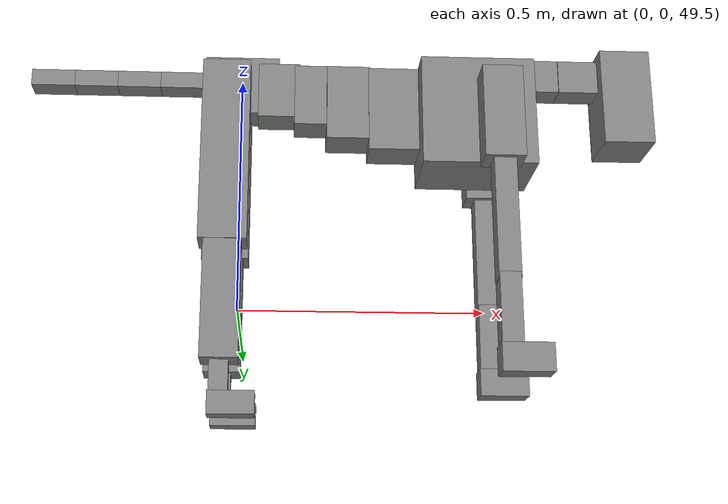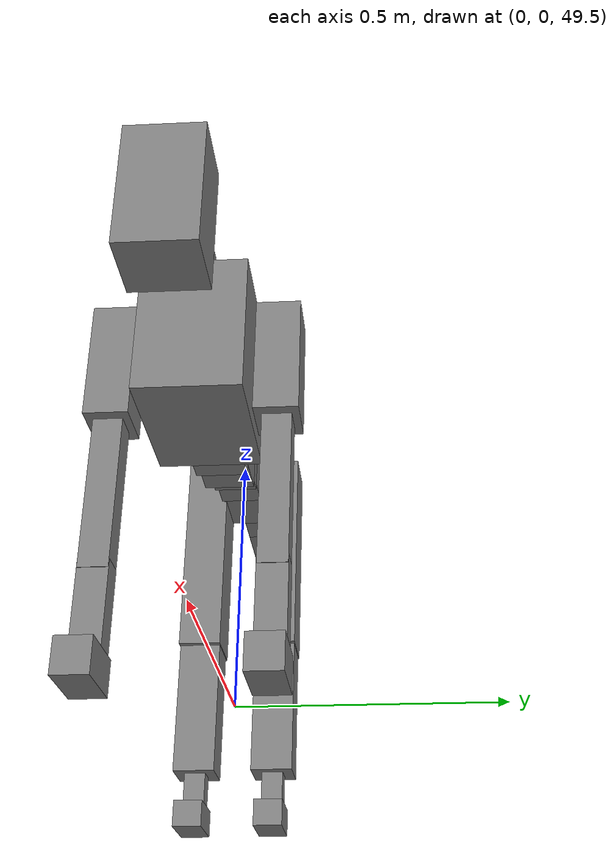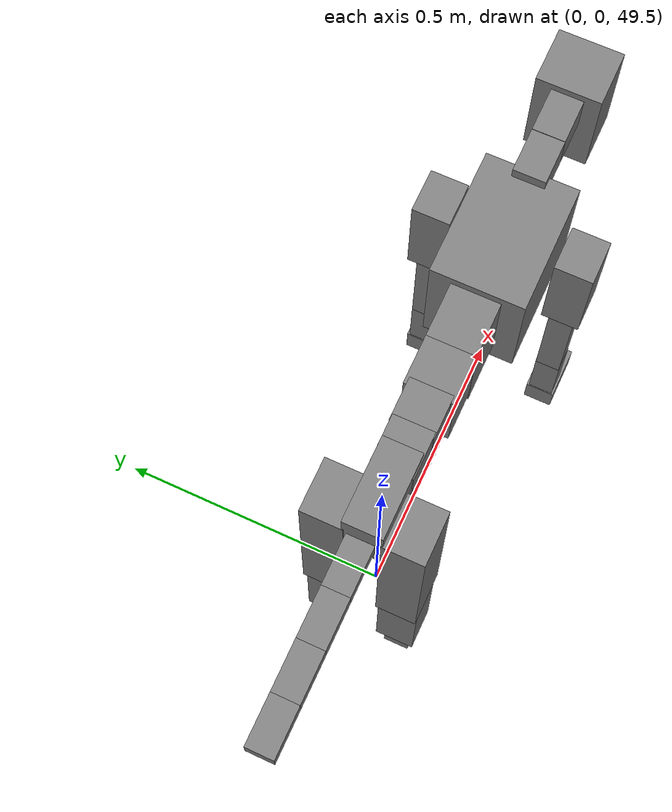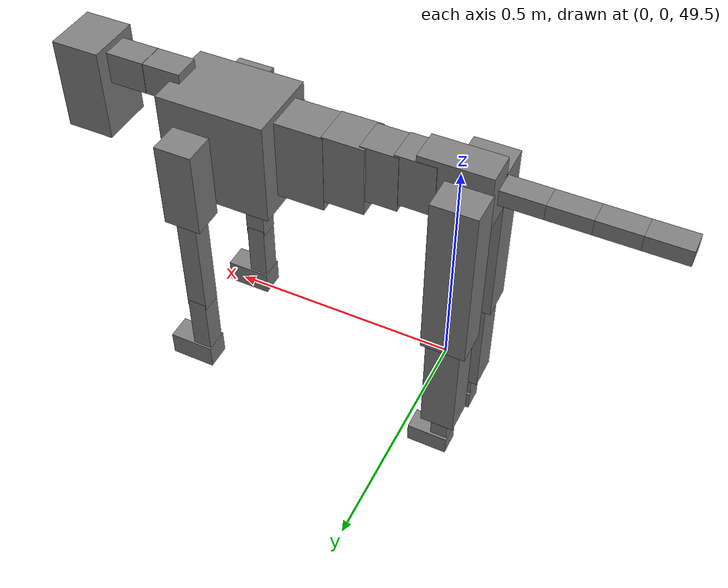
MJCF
<mujoco model="dog">

    <default>
        <joint armature="0.02" stiffness="1" damping="0.2" limited="true"/>
        <geom condim="3" friction="1 0.05 0.05" margin="0.01"/>
        <motor ctrllimited="true" ctrlrange="-1.0 1.0" forcelimited="true" gear="50"/>
    </default>

    <compiler inertiafromgeom="true" angle="radian"/>

    <option timestep="0.016" iterations="50" tolerance="1e-10" solver="Newton" jacobian="dense" cone="pyramidal"/>

    <size nconmax="20000" njmax="60000" nstack="5000000"/>
    <visual>
        <map force="0.1" zfar="30"/>
        <rgba haze="0.15 0.25 0.35 1"/>
        <quality shadowsize="2048"/>
        <global offwidth="800" offheight="800"/>
    </visual>

    <asset>
        <texture type="skybox" builtin="gradient" rgb1="0.3 0.5 0.7" rgb2="0 0 0" width="512" height="512"/>
        <texture name="texplane" type="2d" builtin="checker" rgb1=".2 .3 .4" rgb2=".1 0.15 0.2" width="512" height="512"
                 mark="cross" markrgb=".8 .8 .8"/>
        <texture name="texgeom" type="cube" builtin="flat" mark="cross" width="127" height="1278" rgb1="0.8 0.6 0.4"
                 rgb2="0.8 0.6 0.4" markrgb="1 1 1" random="0.01"/>

        <material name="matplane" reflectance="0.3" texture="texplane" texrepeat="1 1" texuniform="true"/>
        <material name="matgeom" texture="texgeom" texuniform="true" rgba="0.8 0.6 .4 1"/>
    </asset>

    <worldbody>
        <geom name="floor" pos="0 0 0" size="0 0 .25" type="plane" material="matplane" condim="3"/>

        <light directional="false" diffuse=".2 .2 .2" specular="0 0 0" pos="0 0 5" dir="0 0 -1" castshadow="false"/>
        <light mode="targetbodycom" target="torso" directional="false" diffuse=".8 .8 .8" specular="0.3 0.3 0.3"
               pos="0 0 4.0" dir="0 0 -1"/>

        <body name="root" pos="0 0 50">
            <freejoint name="root_1"/>
            <geom type="box" pos="0 0 -0.02" size="0.0774  0.0358  0.063" density="2030"/>

            <body name="spine1" pos="0.054 0 0">
                <joint name="spine1_y" axis="0 1 0" range="0 0.7" limited="true"/>
                <geom type="box" pos="0.02375 0 -0.03" size="0.04375  0.0375  0.05985" density="2030"/>

                <body name="spine2" pos="0.0612 0 0">
                    <joint name="spine2_y" axis="0 1 0" range="-0.15 0.15" limited="true"/>
                    <geom type="box" pos="0.03555  0  -0.04" size="0.04055  0.039  0.06615" density="2030"/>

                    <body name="spine3" pos="0.0730 0 0">
                        <joint name="spine3_y" axis="0 1 0" range="-0.15 0.15" limited="true"/>
                        <geom type="box" pos="0.03555  0  -0.057" size="0.04555  0.0445  0.081" density="2030"/>

                        <body name="spine4" pos="0.0780 0 0">
                            <joint name="spine4_y" axis="0 1 0" range="-0.15 0.15" limited="true"/>
                            <geom type="box" pos="0.05265  0  -0.07" size="0.05265  0.045  0.09135" density="2030"/>

                            <body name="torso" pos="0.1082 0 0">
                                <joint name="torso_y" axis="0 1 0" range="-0.15 0.15" limited="true"/>
                                <geom type="box" pos="0.11925  0  -0.085" size="0.11925  0.085  0.11745"
                                      density="2030"/>

                                <body name="neck1" pos="0.2160  0   0.0180">
                                    <joint name="neck1_y" axis="0 1 0" range="-1.2  -1" limited="true"/>
                                    <geom type="box" pos="0.0423  0  0" size="0.0423  0.03  0.036" density="2325"/>

                                    <body name="neck2" pos="0.0853  0  0">
                                        <joint name="neck2_y" axis="0 1 0" range="0.1  0" limited="true"/>
                                        <geom type="box" pos="0.0423  0  0" size="0.0423  0.03  0.036" density="2325"/>

                                        <body name="head" pos="0.0853  0  0">
                                            <joint name="head_y" axis="0 1 0" range="-0.3  -0.2" limited="true"/>
                                            <geom type="box" pos="0.0531  0  -0.055" size="0.0531  0.06  0.1044"
                                                  density="4030"/>

                                        </body>
                                    </body>
                                </body>

                                <body name="front_shoulder" pos="0.156  0   -0.0480">
                                    <joint name="front_shoulder_y" axis="0 1 0" range="-1 1.5" limited="true"/>
                                    <geom type="box" pos="0 0.13 -0.0713" size="0.0411  0.0351  0.0979" density="1158"/>
                                    <geom type="box" pos="0 -0.13 -0.0713" size="0.0411  0.0351  0.0979"
                                          density="1158"/>

                                    <body name="front_elbow" pos="0  0  -0.1425">
                                        <joint name="front_elbow_y" axis="0 1 0" range="-2 0" limited="true"/>
                                        <geom type="box" pos="0 0.13 -0.1381" size="0.0226  0.0231  0.1381"
                                              density="1081"/>
                                        <geom type="box" pos="0 -0.13 -0.1381" size="0.0226  0.0231  0.1381"
                                              density="1081"/>

                                        <body name="front_wrist" pos="0  0  -0.2761">
                                            <joint name="front_wrist_y" axis="0 1 0" range="-0.2 0" limited="true"/>
                                            <geom type="box" pos="0 0.13 -0.0707" size="0.0213  0.0237  0.0839"
                                                  density="1664"/>
                                            <geom type="box" pos="0 -0.13 -0.0707" size="0.0213  0.0237  0.0839"
                                                  density="1664"/>

                                            <body name="front_finger_end" pos="0  0  -0.1415">
                                                <joint name="front_finger_y" axis="0 1 0" range="-0.4 1"
                                                       limited="true"/>
                                                <geom type="box" pos="0.0278  0.13  -0.0134"
                                                      size="0.0509  0.0278  0.0284" density="1515"/>
                                                <geom type="box" pos="0.0278  -0.13  -0.0134"
                                                      size="0.0509  0.0278  0.0284" density="1515"/>

                                            </body>

                                        </body>
                                    </body>
                                </body>

                            </body>
                        </body>
                    </body>
                </body>
            </body>

            <body name="back_hip" pos="-0.03 0 -0.018">
                <joint name="back_hip_y" axis="0 1 0" range="-1.5 0.3" limited="true"/>
                <geom type="box" pos="0 0.07 -0.1698" size="0.0487  0.0382  0.1926" density="1154"/>
                <geom type="box" pos="0 -0.07 -0.1698" size="0.0487  0.0382  0.1926" density="1154"/>

                <body name="back_knee" pos="0  0  -0.3396">
                    <joint name="back_knee_y" axis="0 1 0" range="0 2.8" limited="true"/>
                    <geom type="box" pos="0 0.07 -0.1227" size="0.0375  0.0369  0.1382" density="1227"/>
                    <geom type="box" pos="0 -0.07 -0.1227" size="0.0375  0.0369  0.1382" density="1227"/>

                    <body name="back_ankle" pos="0  0  -0.2454">
                        <joint name="back_ankle_y" axis="0 1 0" range="-2.2 0" limited="true"/>
                        <geom type="box" pos="0 0.07 -0.0456" size="0.0187  0.0187  0.0569" density="1284"/>
                        <geom type="box" pos="0 -0.07 -0.0456" size="0.0187  0.0187  0.0569" density="1284"/>

                        <body name="back_toe_end" pos="0  0  -0.0913">
                            <joint name="back_toe_y" axis="0 1 0" range="-0.4 1" limited="true"/>
                            <geom type="box" pos="0.0249  0.07  -0.0077" size="0.0457  0.0249  0.0227" density="1515"/>
                            <geom type="box" pos="0.0249  -0.07  -0.0077" size="0.0457  0.0249  0.0227" density="1515"/>

                        </body>
                    </body>
                </body>
            </body>

            <body name="tail1" pos="-0.074 0 -0.006">
                <joint name="tail1_y" axis="0 1 0" range="-0.2 0.2" limited="true"/>
                <geom type="box" pos="-0.0536  0  0" size="0.045  0.025  0.0175" density="1587"/>

                <body name="tail2" pos="-0.09 0 0">
                    <joint name="tail2_y" axis="0 1 0" range="-0.2 0.2" limited="true"/>
                    <geom type="box" pos="-0.0536  0  0" size="0.045  0.025  0.0175" density="1587"/>

                    <body name="tail3" pos="-0.09 0 0">
                        <joint name="tail3_y" axis="0 1 0" range="-0.2 0.2" limited="true"/>
                        <geom type="box" pos="-0.0536  0  0" size="0.045  0.025  0.0175" density="1587"/>

                        <body name="tail4" pos="-0.09 0 0">
                            <joint name="tail4_y" axis="0 1 0" range="-0.2 0.2" limited="true"/>
                            <geom type="box" pos="-0.0536  0  0" size="0.045  0.025  0.0175" density="1587"/>

                        </body>
                    </body>
                </body>
            </body>
        </body>
    </worldbody>

    <actuator>
        <motor joint="spine1_y" forcerange="-150 150     "/>
        <motor joint="spine2_y" forcerange="-150 150     "/>
        <motor joint="spine3_y" forcerange="-150 150     "/>
        <motor joint="spine4_y" forcerange="-150 150     "/>
        <motor joint="torso_y" forcerange="-150 150     "/>
        <motor joint="neck1_y" forcerange="-100 100       "/>
        <motor joint="neck2_y" forcerange="-100 100       "/>
        <motor joint="head_y" forcerange="-150 150       "/>
        <motor joint="front_shoulder_y" forcerange="-162.49 171.43"/>
        <motor joint="front_elbow_y" forcerange="-129.34 138.51"/>
        <motor joint="front_wrist_y" forcerange="-122.93 66.37"/>
        <motor joint="front_finger_y" forcerange="-51.40 56.69"/>
        <motor joint="back_hip_y" forcerange="-341.90 367.86"/>
        <motor joint="back_knee_y" forcerange="-370.37 366.97"/>
        <motor joint="back_angle_y" forcerange="-146.94 51.97"/>
        <motor joint="back_toe_y" forcerange="-54.35 65.13"/>
        <motor joint="tail1_y" forcerange="-50 50     "/>
        <motor joint="tail2_y" forcerange="-50 50     "/>
        <motor joint="tail3_y" forcerange="-50 50     "/>
        <motor joint="tail4_y" forcerange="-50 50     "/>
    </actuator>
</mujoco>
